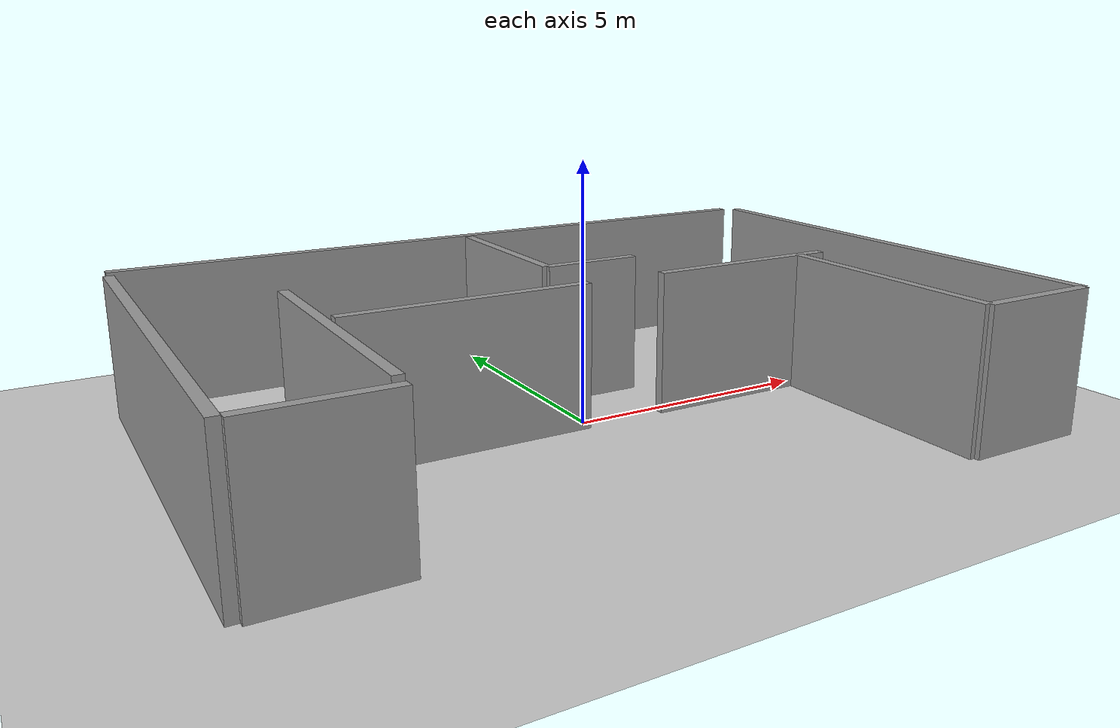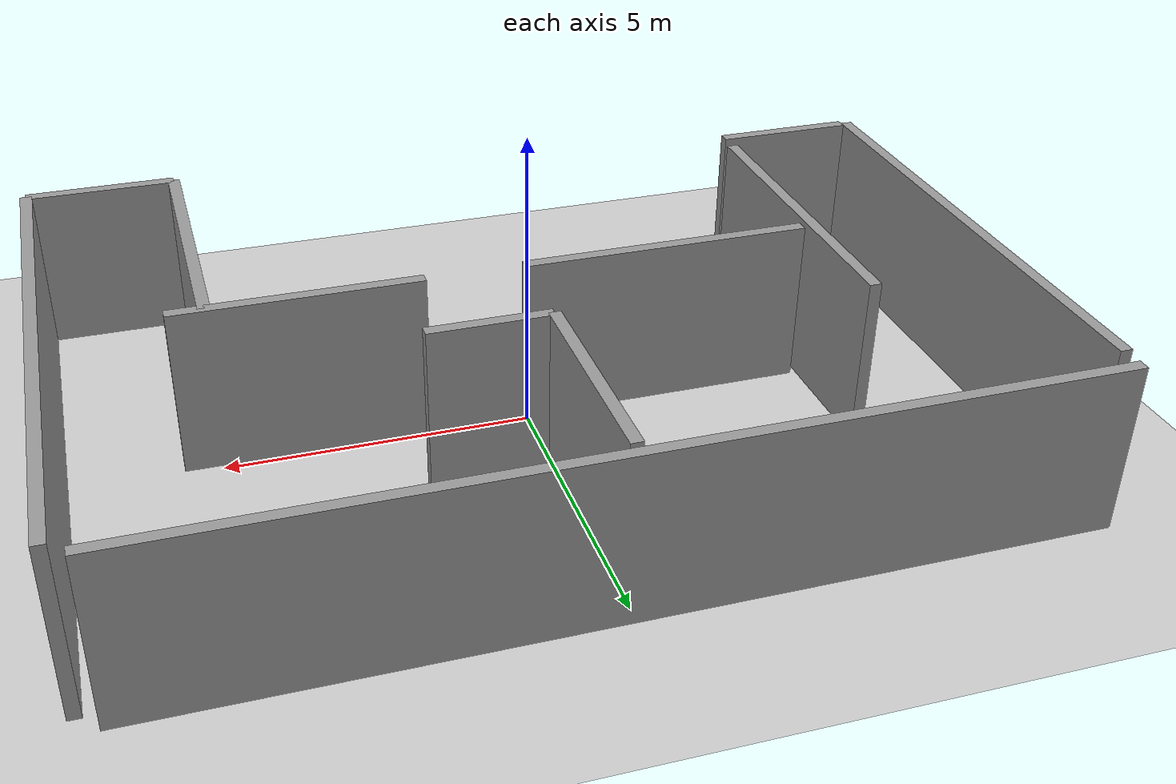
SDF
<sdf version="1.7">
 <world name="default">
  <plugin name="gazebo_ros_state" filename="libgazebo_ros_state.so">
   <ros><namespace>/gazebo_spawner</namespace></ros>
   <update_rate>1.0</update_rate>
  </plugin>
  <model name="ground_plane">
   <static>1</static>
   <link name="link">
    <collision name="collision">
     <geometry><plane><normal>0 0 1</normal><size>100 100</size></plane></geometry>
     <surface><friction><ode><mu>100</mu><mu2>50</mu2></ode></friction></surface>
    </collision>
    <visual name="visual">
     <cast_shadows>0</cast_shadows>
     <geometry><plane><normal>0 0 1</normal><size>100 100</size></plane></geometry>
     <material>
      <script><uri>file://media/materials/scripts/gazebo.material</uri><name>Gazebo/Grey</name></script>
     </material>
    </visual>
   </link>
  </model>
  <light name="sun" type="directional">
   <pose>0 0 10 0 -0 0</pose>
   <diffuse>0.8 0.8 0.8 1</diffuse>
   <specular>0.2 0.2 0.2 1</specular>
   <attenuation>
    <range>1000</range>
    <constant>0.9</constant>
    <linear>0.01</linear>
    <quadratic>0.001</quadratic>
   </attenuation>
   <direction>-0.5 0.1 -0.9</direction>
   <spot><inner_angle>0</inner_angle><outer_angle>0</outer_angle><falloff>0</falloff></spot>
  </light>
  <model name="grey_wall_1">
   <static>1</static>
   <link name="link">
    <pose>-2.4 -0.2 1.4 0 -0 0</pose>
    <collision name="collision"><geometry><box><size>4.8 0.2 2.8</size></box></geometry></collision>
    <visual name="visual">
     <cast_shadows>0</cast_shadows>
     <geometry><box><size>4.8 0.2 2.8</size></box></geometry>
     <material>
      <script>
       <uri>model://grey_wall/materials/scripts</uri>
       <uri>model://grey_wall/materials/textures</uri>
       <name>vrc/grey_wall</name>
      </script>
     </material>
    </visual>
   </link>
  </model>
  <model name="grey_wall_2">
   <static>1</static>
   <link name="link">
    <pose>-5 -0.8 1.4 0 -0 1.57</pose>
    <collision name="collision"><geometry><box><size>5.6 0.2 2.8</size></box></geometry></collision>
    <visual name="visual">
     <cast_shadows>0</cast_shadows>
     <geometry><box><size>5.6 0.2 2.8</size></box></geometry>
     <material>
      <script>
       <uri>model://grey_wall/materials/scripts</uri>
       <uri>model://grey_wall/materials/textures</uri>
       <name>vrc/grey_wall</name>
      </script>
     </material>
    </visual>
   </link>
  </model>
  <model name="grey_wall_3">
   <static>1</static>
   <link name="link">
    <pose>-6.2 -4 1.4 0 -0 0</pose>
    <collision name="collision"><geometry><box><size>2.4 0.2 2.8</size></box></geometry></collision>
    <visual name="visual">
     <cast_shadows>0</cast_shadows>
     <geometry><box><size>2.4 0.2 2.8</size></box></geometry>
     <material>
      <script>
       <uri>model://grey_wall/materials/scripts</uri>
       <uri>model://grey_wall/materials/textures</uri>
       <name>vrc/grey_wall</name>
      </script>
     </material>
    </visual>
   </link>
  </model>
  <model name="grey_wall_4">
   <static>1</static>
   <link name="link">
    <pose>-7.5 0.4 1.4 0 -0 1.57</pose>
    <collision name="collision"><geometry><box><size>8.8 0.2 2.8</size></box></geometry></collision>
    <visual name="visual">
     <cast_shadows>0</cast_shadows>
     <geometry><box><size>8.8 0.2 2.8</size></box></geometry>
     <material>
      <script>
       <uri>model://grey_wall/materials/scripts</uri>
       <uri>model://grey_wall/materials/textures</uri>
       <name>vrc/grey_wall</name>
      </script>
     </material>
    </visual>
   </link>
  </model>
  <model name="grey_wall_5">
   <static>1</static>
   <link name="link">
    <pose>-0.15 5.2 1.4 0 -0 0</pose>
    <collision name="collision"><geometry><box><size>14.7 0.2 2.8</size></box></geometry></collision>
    <visual name="visual">
     <cast_shadows>0</cast_shadows>
     <geometry><box><size>14.7 0.2 2.8</size></box></geometry>
     <material>
      <script>
       <uri>model://grey_wall/materials/scripts</uri>
       <uri>model://grey_wall/materials/textures</uri>
       <name>vrc/grey_wall</name>
      </script>
     </material>
    </visual>
   </link>
  </model>
  <model name="grey_wall_6">
   <static>1</static>
   <link name="link">
    <pose>-0.15 5.2 1.4 0 -0 0</pose>
    <collision name="collision"><geometry><box><size>14.7 0.2 2.8</size></box></geometry></collision>
    <visual name="visual">
     <cast_shadows>0</cast_shadows>
     <geometry><box><size>14.7 0.2 2.8</size></box></geometry>
     <material>
      <script>
       <uri>model://grey_wall/materials/scripts</uri>
       <uri>model://grey_wall/materials/textures</uri>
       <name>vrc/grey_wall</name>
      </script>
     </material>
    </visual>
   </link>
  </model>
  <model name="grey_wall_7">
   <static>1</static>
   <link name="link">
    <pose>7.5 0 1.4 0 -0 1.57</pose>
    <collision name="collision"><geometry><box><size>10 0.2 2.8</size></box></geometry></collision>
    <visual name="visual">
     <cast_shadows>0</cast_shadows>
     <geometry><box><size>10 0.2 2.8</size></box></geometry>
     <material>
      <script>
       <uri>model://grey_wall/materials/scripts</uri>
       <uri>model://grey_wall/materials/textures</uri>
       <name>vrc/grey_wall</name>
      </script>
     </material>
    </visual>
   </link>
  </model>
  <model name="grey_wall_8">
   <static>1</static>
   <link name="link">
    <pose>6.25 -5 1.4 0 -0 0</pose>
    <collision name="collision"><geometry><box><size>2.5 0.2 2.8</size></box></geometry></collision>
    <visual name="visual">
     <cast_shadows>0</cast_shadows>
     <geometry><box><size>2.5 0.2 2.8</size></box></geometry>
     <material>
      <script>
       <uri>model://grey_wall/materials/scripts</uri>
       <uri>model://grey_wall/materials/textures</uri>
       <name>vrc/grey_wall</name>
      </script>
     </material>
    </visual>
   </link>
  </model>
  <model name="grey_wall_9">
   <static>1</static>
   <link name="link">
    <pose>5 -2.6 1.4 0 -0 1.57</pose>
    <collision name="collision"><geometry><box><size>4.8 0.2 2.8</size></box></geometry></collision>
    <visual name="visual">
     <cast_shadows>0</cast_shadows>
     <geometry><box><size>4.8 0.2 2.8</size></box></geometry>
     <material>
      <script>
       <uri>model://grey_wall/materials/scripts</uri>
       <uri>model://grey_wall/materials/textures</uri>
       <name>vrc/grey_wall</name>
      </script>
     </material>
    </visual>
   </link>
  </model>
  <model name="grey_wall_10">
   <static>1</static>
   <link name="link">
    <pose>3.6 -0.2 1.4 0 -0 0</pose>
    <collision name="collision"><geometry><box><size>4 0.2 2.8</size></box></geometry></collision>
    <visual name="visual">
     <cast_shadows>0</cast_shadows>
     <geometry><box><size>4 0.2 2.8</size></box></geometry>
     <material>
      <script>
       <uri>model://grey_wall/materials/scripts</uri>
       <uri>model://grey_wall/materials/textures</uri>
       <name>vrc/grey_wall</name>
      </script>
     </material>
    </visual>
   </link>
  </model>
  <model name="grey_wall_12">
   <static>1</static>
   <link name="link">
    <pose>0 3.2 1.4 0 -0 1.57</pose>
    <collision name="collision"><geometry><box><size>3.6 0.2 2.8</size></box></geometry></collision>
    <visual name="visual">
     <cast_shadows>0</cast_shadows>
     <geometry><box><size>3.6 0.2 2.8</size></box></geometry>
     <material>
      <script>
       <uri>model://grey_wall/materials/scripts</uri>
       <uri>model://grey_wall/materials/textures</uri>
       <name>vrc/grey_wall</name>
      </script>
     </material>
    </visual>
   </link>
  </model>
  <model name="grey_wall_13">
   <static>1</static>
   <link name="link">
    <pose>1 1.4 1.4 0 -0 0</pose>
    <collision name="collision"><geometry><box><size>2 0.2 2.8</size></box></geometry></collision>
    <visual name="visual">
     <cast_shadows>0</cast_shadows>
     <geometry><box><size>2 0.2 2.8</size></box></geometry>
     <material>
      <script>
       <uri>model://grey_wall/materials/scripts</uri>
       <uri>model://grey_wall/materials/textures</uri>
       <name>vrc/grey_wall</name>
      </script>
     </material>
    </visual>
   </link>
  </model>
  <gravity>0 0 -9.8</gravity>
  <magnetic_field>6e-06 2.3e-05 -4.2e-05</magnetic_field>
  <atmosphere type="adiabatic"/>
  <physics type="ode">
   <max_step_size>0.001</max_step_size>
   <real_time_factor>1</real_time_factor>
   <real_time_update_rate>1000</real_time_update_rate>
  </physics>
  <scene><ambient>0.4 0.4 0.4 1</ambient><background>0.7 0.7 0.7 1</background><shadows>1</shadows></scene>
  <audio><device>default</device></audio>
  <spherical_coordinates>
   <surface_model>EARTH_WGS84</surface_model>
   <latitude_deg>0</latitude_deg>
   <longitude_deg>0</longitude_deg>
   <elevation>0</elevation>
   <heading_deg>0</heading_deg>
  </spherical_coordinates>
 </world>
</sdf>
